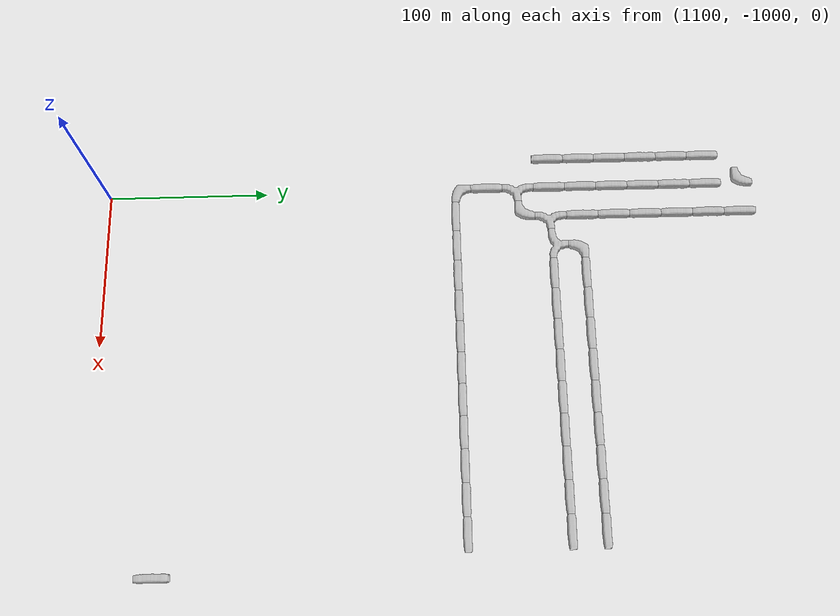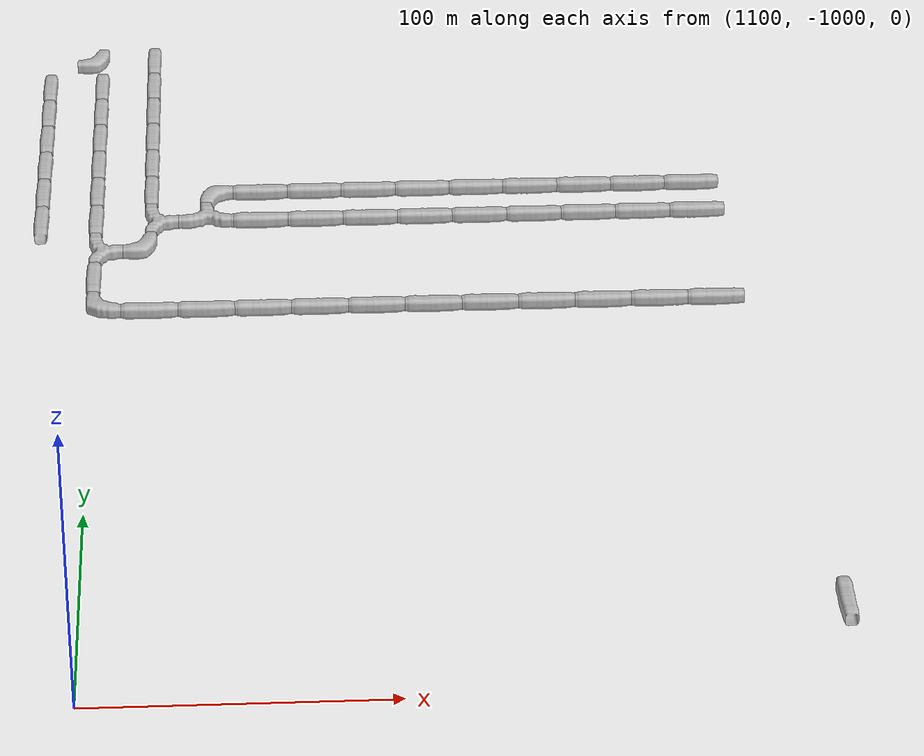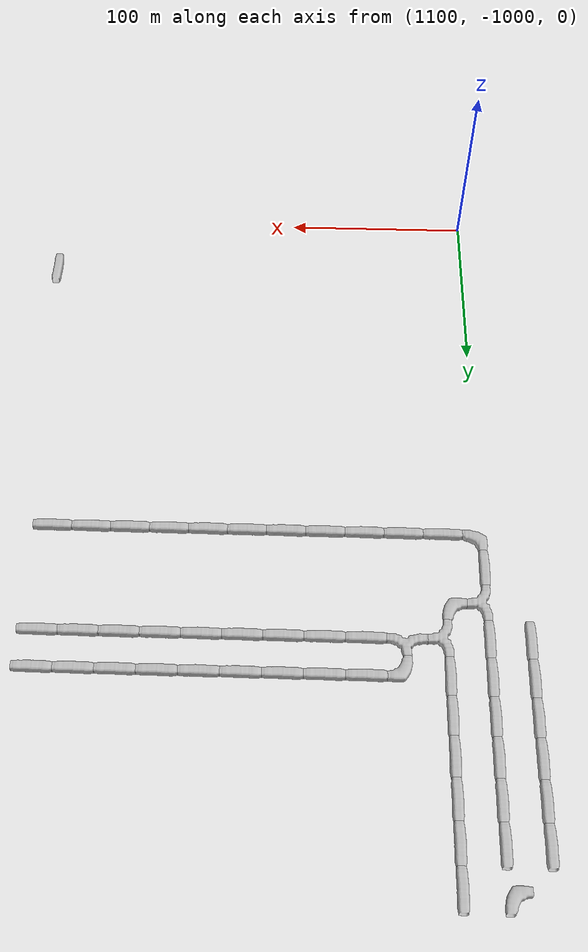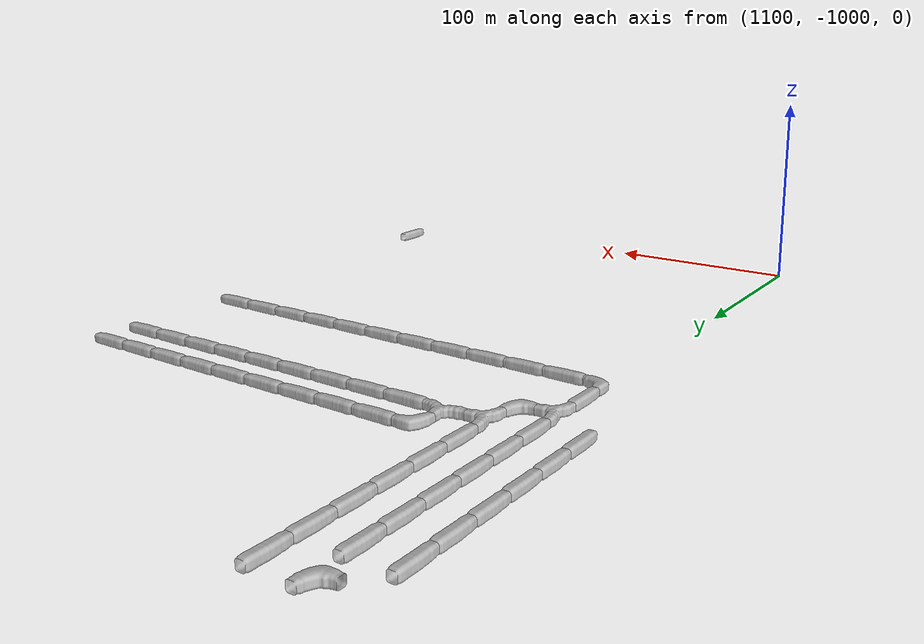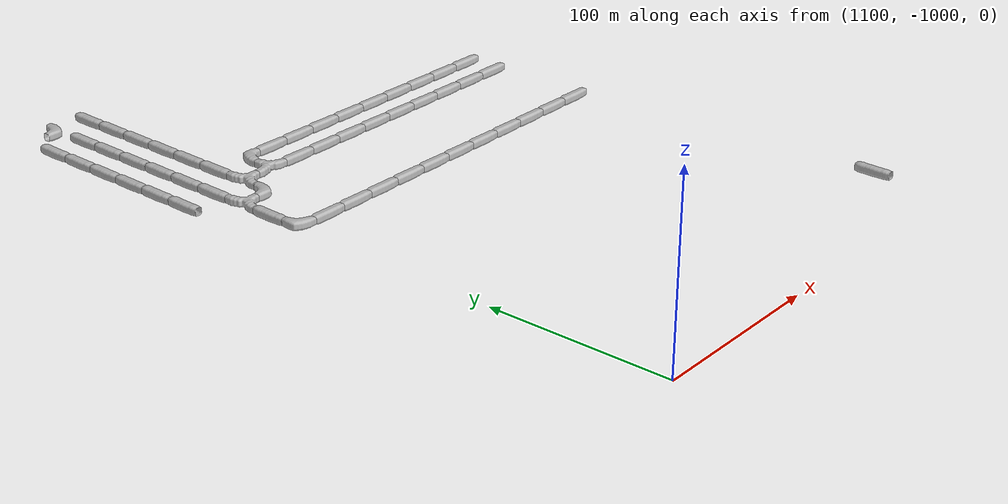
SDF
<sdf version="1.6">
 <world name="cave_32000_32">
  <include>
   <static>true</static>
   <name>cave_56_-30</name>
   <pose>1120 -600 0 0 0 0.0</pose>
   <uri>model://cave_straight_20m</uri>
  </include>
  <include>
   <static>true</static>
   <name>cave_56_-31</name>
   <pose>1120 -620 0 0 0 0.0</pose>
   <uri>model://cave_straight_20m</uri>
  </include>
  <include>
   <static>true</static>
   <name>cave_56_-32</name>
   <pose>1120 -640 0 0 0 0.0</pose>
   <uri>model://cave_straight_20m</uri>
  </include>
  <include>
   <static>true</static>
   <name>cave_56_-33</name>
   <pose>1120 -660 0 0 0 0.0</pose>
   <uri>model://cave_straight_20m</uri>
  </include>
  <include>
   <static>true</static>
   <name>cave_56_-34</name>
   <pose>1120 -680 0 0 0 0.0</pose>
   <uri>model://cave_straight_20m</uri>
  </include>
  <include>
   <static>true</static>
   <name>cave_56_-35</name>
   <pose>1120 -700 0 0 0 0.0</pose>
   <uri>model://cave_straight_20m</uri>
  </include>
  <include>
   <static>true</static>
   <name>cave_56_-36</name>
   <pose>1120 -720 0 0 0 -1.5707963267948966</pose>
   <uri>model://cave_3way_20m</uri>
  </include>
  <include>
   <static>true</static>
   <name>cave_57_-36</name>
   <pose>1140 -720 0 0 0 0.0</pose>
   <uri>model://cave_3way_20m</uri>
  </include>
  <include>
   <static>true</static>
   <name>cave_58_-36</name>
   <pose>1160 -720 0 0 0 1.5707963267948966</pose>
   <uri>model://cave_straight_20m</uri>
  </include>
  <include>
   <static>true</static>
   <name>cave_59_-36</name>
   <pose>1180 -720 0 0 0 1.5707963267948966</pose>
   <uri>model://cave_straight_20m</uri>
  </include>
  <include>
   <static>true</static>
   <name>cave_60_-36</name>
   <pose>1200 -720 0 0 0 1.5707963267948966</pose>
   <uri>model://cave_straight_20m</uri>
  </include>
  <include>
   <static>true</static>
   <name>cave_61_-36</name>
   <pose>1220 -720 0 0 0 1.5707963267948966</pose>
   <uri>model://cave_straight_20m</uri>
  </include>
  <include>
   <static>true</static>
   <name>cave_62_-36</name>
   <pose>1240 -720 0 0 0 1.5707963267948966</pose>
   <uri>model://cave_straight_20m</uri>
  </include>
  <include>
   <static>true</static>
   <name>cave_63_-36</name>
   <pose>1260 -720 0 0 0 1.5707963267948966</pose>
   <uri>model://cave_straight_20m</uri>
  </include>
  <include>
   <static>true</static>
   <name>cave_64_-36</name>
   <pose>1280 -720 0 0 0 1.5707963267948966</pose>
   <uri>model://cave_straight_20m</uri>
  </include>
  <include>
   <static>true</static>
   <name>cave_65_-36</name>
   <pose>1300 -720 0 0 0 1.5707963267948966</pose>
   <uri>model://cave_straight_20m</uri>
  </include>
  <include>
   <static>true</static>
   <name>cave_66_-36</name>
   <pose>1320 -720 0 0 0 1.5707963267948966</pose>
   <uri>model://cave_straight_20m</uri>
  </include>
  <include>
   <static>true</static>
   <name>cave_57_-35</name>
   <pose>1140 -700 0 0 0 -1.5707963267948966</pose>
   <uri>model://cave_L_20m</uri>
  </include>
  <include>
   <static>true</static>
   <name>cave_58_-35</name>
   <pose>1160 -700 0 0 0 1.5707963267948966</pose>
   <uri>model://cave_straight_20m</uri>
  </include>
  <include>
   <static>true</static>
   <name>cave_59_-35</name>
   <pose>1180 -700 0 0 0 1.5707963267948966</pose>
   <uri>model://cave_straight_20m</uri>
  </include>
  <include>
   <static>true</static>
   <name>cave_60_-35</name>
   <pose>1200 -700 0 0 0 1.5707963267948966</pose>
   <uri>model://cave_straight_20m</uri>
  </include>
  <include>
   <static>true</static>
   <name>cave_61_-35</name>
   <pose>1220 -700 0 0 0 1.5707963267948966</pose>
   <uri>model://cave_straight_20m</uri>
  </include>
  <include>
   <static>true</static>
   <name>cave_62_-35</name>
   <pose>1240 -700 0 0 0 1.5707963267948966</pose>
   <uri>model://cave_straight_20m</uri>
  </include>
  <include>
   <static>true</static>
   <name>cave_63_-35</name>
   <pose>1260 -700 0 0 0 1.5707963267948966</pose>
   <uri>model://cave_straight_20m</uri>
  </include>
  <include>
   <static>true</static>
   <name>cave_64_-35</name>
   <pose>1280 -700 0 0 0 1.5707963267948966</pose>
   <uri>model://cave_straight_20m</uri>
  </include>
  <include>
   <static>true</static>
   <name>cave_65_-35</name>
   <pose>1300 -700 0 0 0 1.5707963267948966</pose>
   <uri>model://cave_straight_20m</uri>
  </include>
  <include>
   <static>true</static>
   <name>cave_66_-35</name>
   <pose>1320 -700 0 0 0 1.5707963267948966</pose>
   <uri>model://cave_straight_20m</uri>
  </include>
  <include>
   <static>true</static>
   <name>cave_56_-37</name>
   <pose>1120 -740 0 0 0 1.5707963267948966</pose>
   <uri>model://cave_L_20m</uri>
  </include>
  <include>
   <static>true</static>
   <name>cave_55_-37</name>
   <pose>1100 -740 0 0 0 -1.5707963267948966</pose>
   <uri>model://cave_3way_20m</uri>
  </include>
  <include>
   <static>true</static>
   <name>cave_55_-38</name>
   <pose>1100 -760 0 0 0 0.0</pose>
   <uri>model://cave_straight_20m</uri>
  </include>
  <include>
   <static>true</static>
   <name>cave_55_-39</name>
   <pose>1100 -780 0 0 0 0.0</pose>
   <uri>model://cave_L_20m</uri>
  </include>
  <include>
   <static>true</static>
   <name>cave_56_-39</name>
   <pose>1120 -780 0 0 0 1.5707963267948966</pose>
   <uri>model://cave_straight_20m</uri>
  </include>
  <include>
   <static>true</static>
   <name>cave_57_-39</name>
   <pose>1140 -780 0 0 0 1.5707963267948966</pose>
   <uri>model://cave_straight_20m</uri>
  </include>
  <include>
   <static>true</static>
   <name>cave_58_-39</name>
   <pose>1160 -780 0 0 0 1.5707963267948966</pose>
   <uri>model://cave_straight_20m</uri>
  </include>
  <include>
   <static>true</static>
   <name>cave_59_-39</name>
   <pose>1180 -780 0 0 0 1.5707963267948966</pose>
   <uri>model://cave_straight_20m</uri>
  </include>
  <include>
   <static>true</static>
   <name>cave_60_-39</name>
   <pose>1200 -780 0 0 0 1.5707963267948966</pose>
   <uri>model://cave_straight_20m</uri>
  </include>
  <include>
   <static>true</static>
   <name>cave_61_-39</name>
   <pose>1220 -780 0 0 0 1.5707963267948966</pose>
   <uri>model://cave_straight_20m</uri>
  </include>
  <include>
   <static>true</static>
   <name>cave_62_-39</name>
   <pose>1240 -780 0 0 0 1.5707963267948966</pose>
   <uri>model://cave_straight_20m</uri>
  </include>
  <include>
   <static>true</static>
   <name>cave_63_-39</name>
   <pose>1260 -780 0 0 0 1.5707963267948966</pose>
   <uri>model://cave_straight_20m</uri>
  </include>
  <include>
   <static>true</static>
   <name>cave_64_-39</name>
   <pose>1280 -780 0 0 0 1.5707963267948966</pose>
   <uri>model://cave_straight_20m</uri>
  </include>
  <include>
   <static>true</static>
   <name>cave_65_-39</name>
   <pose>1300 -780 0 0 0 1.5707963267948966</pose>
   <uri>model://cave_straight_20m</uri>
  </include>
  <include>
   <static>true</static>
   <name>cave_66_-39</name>
   <pose>1320 -780 0 0 0 1.5707963267948966</pose>
   <uri>model://cave_straight_20m</uri>
  </include>
  <include>
   <static>true</static>
   <name>cave_67_-48</name>
   <pose>1340 -960 0 0 0 0.0</pose>
   <uri>model://cave_straight_20m</uri>
  </include>
  <include>
   <static>true</static>
   <name>cave_55_-36</name>
   <pose>1100 -720 0 0 0 0.0</pose>
   <uri>model://cave_straight_20m</uri>
  </include>
  <include>
   <static>true</static>
   <name>cave_55_-35</name>
   <pose>1100 -700 0 0 0 0.0</pose>
   <uri>model://cave_straight_20m</uri>
  </include>
  <include>
   <static>true</static>
   <name>cave_55_-34</name>
   <pose>1100 -680 0 0 0 0.0</pose>
   <uri>model://cave_straight_20m</uri>
  </include>
  <include>
   <static>true</static>
   <name>cave_55_-33</name>
   <pose>1100 -660 0 0 0 0.0</pose>
   <uri>model://cave_straight_20m</uri>
  </include>
  <include>
   <static>true</static>
   <name>cave_55_-32</name>
   <pose>1100 -640 0 0 0 0.0</pose>
   <uri>model://cave_straight_20m</uri>
  </include>
  <include>
   <static>true</static>
   <name>cave_55_-31</name>
   <pose>1100 -620 0 0 0 0.0</pose>
   <uri>model://cave_straight_20m</uri>
  </include>
  <include>
   <static>true</static>
   <name>cave_55_-30</name>
   <pose>1100 -600 0 0 0 1.5707963267948966</pose>
   <uri>model://cave_L_20m</uri>
  </include>
  <include>
   <static>true</static>
   <name>cave_54_-31</name>
   <pose>1080 -620 0 0 0 0.0</pose>
   <uri>model://cave_straight_20m</uri>
  </include>
  <include>
   <static>true</static>
   <name>cave_54_-32</name>
   <pose>1080 -640 0 0 0 0.0</pose>
   <uri>model://cave_straight_20m</uri>
  </include>
  <include>
   <static>true</static>
   <name>cave_54_-33</name>
   <pose>1080 -660 0 0 0 0.0</pose>
   <uri>model://cave_straight_20m</uri>
  </include>
  <include>
   <static>true</static>
   <name>cave_54_-34</name>
   <pose>1080 -680 0 0 0 0.0</pose>
   <uri>model://cave_straight_20m</uri>
  </include>
  <include>
   <static>true</static>
   <name>cave_54_-35</name>
   <pose>1080 -700 0 0 0 0.0</pose>
   <uri>model://cave_straight_20m</uri>
  </include>
  <include>
   <static>true</static>
   <name>cave_54_-36</name>
   <pose>1080 -720 0 0 0 0.0</pose>
   <uri>model://cave_straight_20m</uri>
  </include>
 </world>
</sdf>
